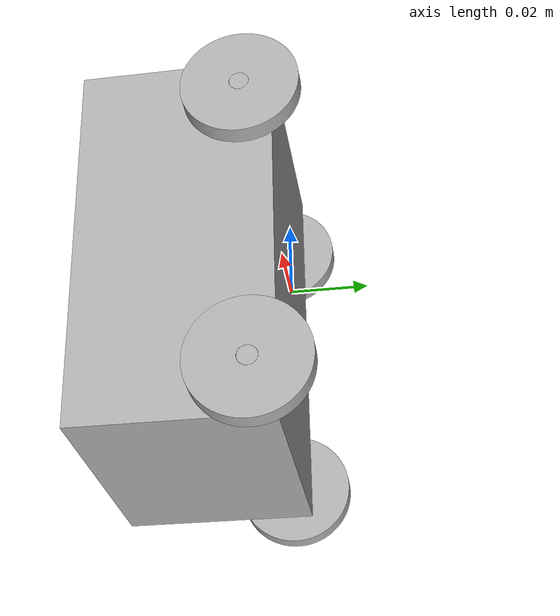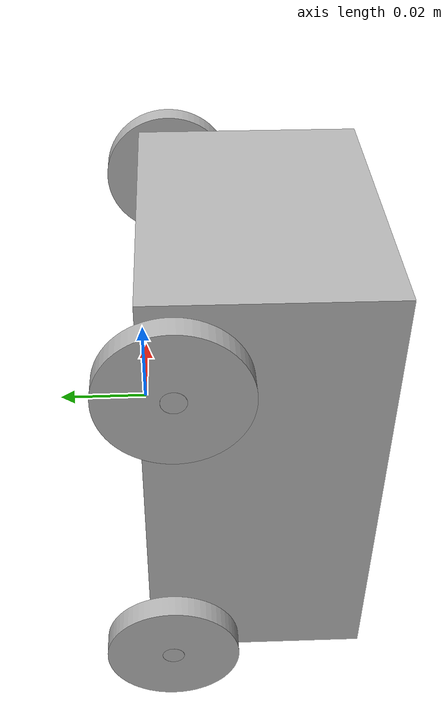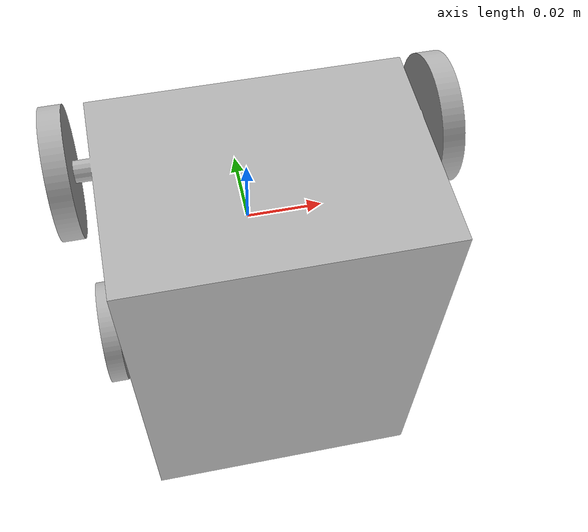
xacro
<?xml version="1.0" ?>
<robot name="bot_demo" xmlns:xacro="http://www.ros.org/wiki/xacro">

<xacro:include filename="$(find bot_demo_description)/urdf/materials.xacro" />
<xacro:include filename="$(find bot_demo_description)/urdf/bot_demo.trans" />
<xacro:include filename="$(find bot_demo_description)/urdf/bot_demo.gazebo" />
<link name="base_link">
  <inertial>
    <origin rpy="0 0 0" xyz="0.0 -0.024957416567412117 -4.362465870905329e-06"/>
    <mass value="2.75366537558267"/>
    <inertia ixx="0.002873" ixy="0.0" ixz="0.0" iyy="0.00343" iyz="0.0" izz="0.001706"/>
  </inertial>
  <visual>
    <origin rpy="0 0 0" xyz="0 0 0"/>
    <geometry>
      <mesh filename="package://bot_demo_description/meshes/base_link.stl" scale="0.001 0.001 0.001"/>
    </geometry>
    <material name="silver"/>
  </visual>
  <collision>
    <origin rpy="0 0 0" xyz="0 0 0"/>
    <geometry>
      <mesh filename="package://bot_demo_description/meshes/base_link.stl" scale="0.001 0.001 0.001"/>
    </geometry>
  </collision>
</link>

<link name="wheel1_1">
  <inertial>
    <origin rpy="0 0 0" xyz="-0.0024999999999999953 5.227513993379118e-08 -1.9847322889343655e-07"/>
    <mass value="0.026973518174181"/>
    <inertia ixx="3e-06" ixy="-0.0" ixz="0.0" iyy="2e-06" iyz="-0.0" izz="2e-06"/>
  </inertial>
  <visual>
    <origin rpy="0 0 0" xyz="-0.045 0.006769 -0.03608"/>
    <geometry>
      <mesh filename="package://bot_demo_description/meshes/wheel1_1.stl" scale="0.001 0.001 0.001"/>
    </geometry>
    <material name="silver"/>
  </visual>
  <collision>
    <origin rpy="0 0 0" xyz="-0.045 0.006769 -0.03608"/>
    <geometry>
      <mesh filename="package://bot_demo_description/meshes/wheel1_1.stl" scale="0.001 0.001 0.001"/>
    </geometry>
  </collision>
</link>

<link name="wheel1_4">
  <inertial>
    <origin rpy="0 0 0" xyz="-0.0024999999999999883 3.518155856632385e-07 3.486999119103884e-07"/>
    <mass value="0.026973518174181"/>
    <inertia ixx="3e-06" ixy="0.0" ixz="-0.0" iyy="2e-06" iyz="0.0" izz="2e-06"/>
  </inertial>
  <visual>
    <origin rpy="0 0 0" xyz="-0.045 0.005193 0.039977"/>
    <geometry>
      <mesh filename="package://bot_demo_description/meshes/wheel1_4.stl" scale="0.001 0.001 0.001"/>
    </geometry>
    <material name="silver"/>
  </visual>
  <collision>
    <origin rpy="0 0 0" xyz="-0.045 0.005193 0.039977"/>
    <geometry>
      <mesh filename="package://bot_demo_description/meshes/wheel1_4.stl" scale="0.001 0.001 0.001"/>
    </geometry>
  </collision>
</link>

<link name="wheel1_2">
  <inertial>
    <origin rpy="0 0 0" xyz="0.0024999999999999953 3.518155931260189e-07 3.4869990436087184e-07"/>
    <mass value="0.026973518174181"/>
    <inertia ixx="3e-06" ixy="-0.0" ixz="0.0" iyy="2e-06" iyz="-0.0" izz="2e-06"/>
  </inertial>
  <visual>
    <origin rpy="0 0 0" xyz="0.045 0.005193 0.039977"/>
    <geometry>
      <mesh filename="package://bot_demo_description/meshes/wheel1_2.stl" scale="0.001 0.001 0.001"/>
    </geometry>
    <material name="silver"/>
  </visual>
  <collision>
    <origin rpy="0 0 0" xyz="0.045 0.005193 0.039977"/>
    <geometry>
      <mesh filename="package://bot_demo_description/meshes/wheel1_2.stl" scale="0.001 0.001 0.001"/>
    </geometry>
  </collision>
</link>

<link name="wheel1_3">
  <inertial>
    <origin rpy="0 0 0" xyz="0.0024999999999999953 5.227513993379118e-08 -1.9847322886568097e-07"/>
    <mass value="0.026973518174181"/>
    <inertia ixx="3e-06" ixy="-0.0" ixz="-0.0" iyy="2e-06" iyz="-0.0" izz="2e-06"/>
  </inertial>
  <visual>
    <origin rpy="0 0 0" xyz="0.045 0.006769 -0.03608"/>
    <geometry>
      <mesh filename="package://bot_demo_description/meshes/wheel1_3.stl" scale="0.001 0.001 0.001"/>
    </geometry>
    <material name="silver"/>
  </visual>
  <collision>
    <origin rpy="0 0 0" xyz="0.045 0.006769 -0.03608"/>
    <geometry>
      <mesh filename="package://bot_demo_description/meshes/wheel1_3.stl" scale="0.001 0.001 0.001"/>
    </geometry>
  </collision>
</link>

<joint name="Rev1" type="continuous">
  <origin rpy="0 0 0" xyz="0.045 -0.006769 0.03608"/>
  <parent link="base_link"/>
  <child link="wheel1_1"/>
  <axis xyz="1.0 0.0 0.0"/>
</joint>

<joint name="Rev2" type="continuous">
  <origin rpy="0 0 0" xyz="0.045 -0.005193 -0.039977"/>
  <parent link="base_link"/>
  <child link="wheel1_4"/>
  <axis xyz="1.0 0.0 0.0"/>
</joint>

<joint name="Rev3" type="continuous">
  <origin rpy="0 0 0" xyz="-0.045 -0.005193 -0.039977"/>
  <parent link="base_link"/>
  <child link="wheel1_2"/>
  <axis xyz="-1.0 0.0 0.0"/>
</joint>

<joint name="Rev4" type="continuous">
  <origin rpy="0 0 0" xyz="-0.045 -0.006769 0.03608"/>
  <parent link="base_link"/>
  <child link="wheel1_3"/>
  <axis xyz="-1.0 0.0 0.0"/>
</joint>

</robot>

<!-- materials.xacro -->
<robot name="bot_demo" xmlns:xacro="http://www.ros.org/wiki/xacro" >

<material name="silver">
  <color rgba="0.700 0.700 0.700 1.000"/>
</material>

</robot>

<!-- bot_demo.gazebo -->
<robot name="bot_demo" xmlns:xacro="http://www.ros.org/wiki/xacro" >

<xacro:property name="body_color" value="Gazebo/Silver" />

<gazebo>
  <plugin filename="libgazebo_ros_control.so" name="control"/>
</gazebo>
<gazebo reference="base_link">
  <material>${body_color}</material>
  <mu1>0.2</mu1>
  <mu2>0.2</mu2>
  <selfCollide>true</selfCollide>
  <gravity>true</gravity>
</gazebo>

<gazebo reference="wheel1_1">
  <material>${body_color}</material>
  <mu1>0.2</mu1>
  <mu2>0.2</mu2>
  <selfCollide>true</selfCollide>
</gazebo>

<gazebo reference="wheel1_4">
  <material>${body_color}</material>
  <mu1>0.2</mu1>
  <mu2>0.2</mu2>
  <selfCollide>true</selfCollide>
</gazebo>

<gazebo reference="wheel1_2">
  <material>${body_color}</material>
  <mu1>0.2</mu1>
  <mu2>0.2</mu2>
  <selfCollide>true</selfCollide>
</gazebo>

<gazebo reference="wheel1_3">
  <material>${body_color}</material>
  <mu1>0.2</mu1>
  <mu2>0.2</mu2>
  <selfCollide>true</selfCollide>
</gazebo>

</robot>
